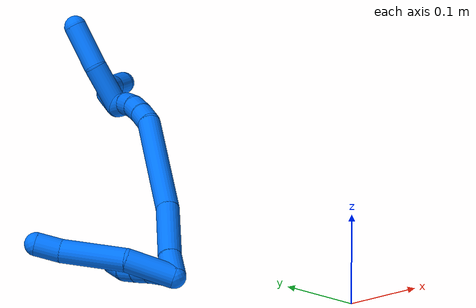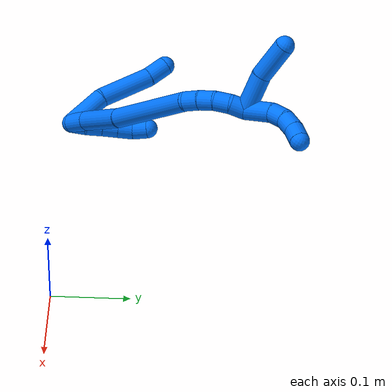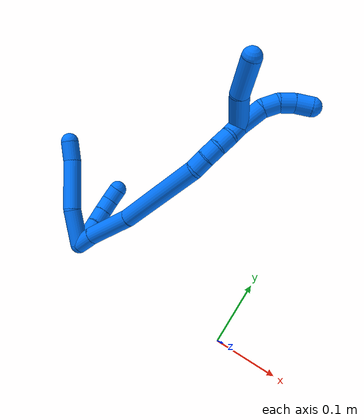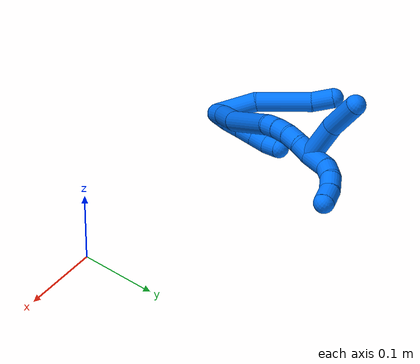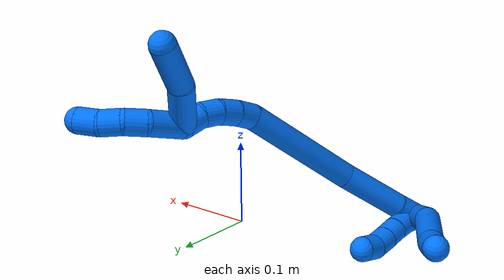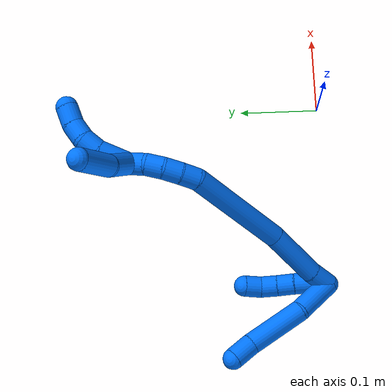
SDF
<sdf version="1.7">
 <world name="default">
  <model name="14">
   <static>0</static>
   <link name="14">
    <collision name="collision-cylinder-e_1_2_8">
     <pose>-0.017431 0.006884 0.018058 -0.364195 -0.733907 0.141315</pose>
     <geometry><cylinder><radius>0.0125</radius><length>0.052051</length></cylinder></geometry>
     <surface>
      <friction><ode><mu>1.16</mu><mu2>1.16</mu2><slip1>0</slip1><slip2>0</slip2></ode></friction>
      <contact><ode><kp>1e+06</kp><kd>1</kd><max_vel>0</max_vel><min_depth>0.001</min_depth></ode></contact>
     </surface>
    </collision>
    <visual name="visual-cylinder-e_1_2_8">
     <pose>-0.017431 0.006884 0.018058 -0.364195 -0.733907 0.141315</pose>
     <geometry><cylinder><radius>0.0125</radius><length>0.052051</length></cylinder></geometry>
     <material><ambient>0 0.462745 1 1</ambient></material>
    </visual>
    <collision name="collision-cylinder-e_2_8_9">
     <pose>-0.05904 0.031455 0.054611 -0.763101 -0.757001 0.316437</pose>
     <geometry><cylinder><radius>0.0125</radius><length>0.070412</length></cylinder></geometry>
     <surface>
      <friction><ode><mu>1.16</mu><mu2>1.16</mu2><slip1>0</slip1><slip2>0</slip2></ode></friction>
      <contact><ode><kp>1e+06</kp><kd>1</kd><max_vel>0</max_vel><min_depth>0.001</min_depth></ode></contact>
     </surface>
    </collision>
    <visual name="visual-cylinder-e_2_8_9">
     <pose>-0.05904 0.031455 0.054611 -0.763101 -0.757001 0.316437</pose>
     <geometry><cylinder><radius>0.0125</radius><length>0.070412</length></cylinder></geometry>
     <material><ambient>0 0.462745 1 1</ambient></material>
    </visual>
    <collision name="collision-cylinder-e_3_9_6">
     <pose>-0.092622 0.054039 0.081889 -0.508486 -0.751905 0.204438</pose>
     <geometry><cylinder><radius>0.0125</radius><length>0.027537</length></cylinder></geometry>
     <surface>
      <friction><ode><mu>1.16</mu><mu2>1.16</mu2><slip1>0</slip1><slip2>0</slip2></ode></friction>
      <contact><ode><kp>1e+06</kp><kd>1</kd><max_vel>0</max_vel><min_depth>0.001</min_depth></ode></contact>
     </surface>
    </collision>
    <visual name="visual-cylinder-e_3_9_6">
     <pose>-0.092622 0.054039 0.081889 -0.508486 -0.751905 0.204438</pose>
     <geometry><cylinder><radius>0.0125</radius><length>0.027537</length></cylinder></geometry>
     <material><ambient>0 0.462745 1 1</ambient></material>
    </visual>
    <collision name="collision-cylinder-e_1_2_10">
     <pose>-0.001379 0.009192 0.00369 -1.18907 -0.138368 0.093638</pose>
     <geometry><cylinder><radius>0.0125</radius><length>0.02</length></cylinder></geometry>
     <surface>
      <friction><ode><mu>1.16</mu><mu2>1.16</mu2><slip1>0</slip1><slip2>0</slip2></ode></friction>
      <contact><ode><kp>1e+06</kp><kd>1</kd><max_vel>0</max_vel><min_depth>0.001</min_depth></ode></contact>
     </surface>
    </collision>
    <visual name="visual-cylinder-e_1_2_10">
     <pose>-0.001379 0.009192 0.00369 -1.18907 -0.138368 0.093638</pose>
     <geometry><cylinder><radius>0.0125</radius><length>0.02</length></cylinder></geometry>
     <material><ambient>0 0.462745 1 1</ambient></material>
    </visual>
    <collision name="collision-cylinder-e_2_10_11">
     <pose>-0.005852 0.027144 0.011078 -1.17135 -0.314556 0.209614</pose>
     <geometry><cylinder><radius>0.0125</radius><length>0.02</length></cylinder></geometry>
     <surface>
      <friction><ode><mu>1.16</mu><mu2>1.16</mu2><slip1>0</slip1><slip2>0</slip2></ode></friction>
      <contact><ode><kp>1e+06</kp><kd>1</kd><max_vel>0</max_vel><min_depth>0.001</min_depth></ode></contact>
     </surface>
    </collision>
    <visual name="visual-cylinder-e_2_10_11">
     <pose>-0.005852 0.027144 0.011078 -1.17135 -0.314556 0.209614</pose>
     <geometry><cylinder><radius>0.0125</radius><length>0.02</length></cylinder></geometry>
     <material><ambient>0 0.462745 1 1</ambient></material>
    </visual>
    <collision name="collision-cylinder-e_3_11_12">
     <pose>-0.012417 0.044737 0.01793 -1.22779 -0.354449 0.251113</pose>
     <geometry><cylinder><radius>0.0125</radius><length>0.02</length></cylinder></geometry>
     <surface>
      <friction><ode><mu>1.16</mu><mu2>1.16</mu2><slip1>0</slip1><slip2>0</slip2></ode></friction>
      <contact><ode><kp>1e+06</kp><kd>1</kd><max_vel>0</max_vel><min_depth>0.001</min_depth></ode></contact>
     </surface>
    </collision>
    <visual name="visual-cylinder-e_3_11_12">
     <pose>-0.012417 0.044737 0.01793 -1.22779 -0.354449 0.251113</pose>
     <geometry><cylinder><radius>0.0125</radius><length>0.02</length></cylinder></geometry>
     <material><ambient>0 0.462745 1 1</ambient></material>
    </visual>
    <collision name="collision-cylinder-e_4_12_13">
     <pose>-0.019015 0.062452 0.024447 -1.20885 -0.318091 0.220662</pose>
     <geometry><cylinder><radius>0.0125</radius><length>0.02</length></cylinder></geometry>
     <surface>
      <friction><ode><mu>1.16</mu><mu2>1.16</mu2><slip1>0</slip1><slip2>0</slip2></ode></friction>
      <contact><ode><kp>1e+06</kp><kd>1</kd><max_vel>0</max_vel><min_depth>0.001</min_depth></ode></contact>
     </surface>
    </collision>
    <visual name="visual-cylinder-e_4_12_13">
     <pose>-0.019015 0.062452 0.024447 -1.20885 -0.318091 0.220662</pose>
     <geometry><cylinder><radius>0.0125</radius><length>0.02</length></cylinder></geometry>
     <material><ambient>0 0.462745 1 1</ambient></material>
    </visual>
    <collision name="collision-cylinder-e_5_13_5">
     <pose>-0.023526 0.07932 0.03367 -0.937799 -0.138735 0.070365</pose>
     <geometry><cylinder><radius>0.0125</radius><length>0.02</length></cylinder></geometry>
     <surface>
      <friction><ode><mu>1.16</mu><mu2>1.16</mu2><slip1>0</slip1><slip2>0</slip2></ode></friction>
      <contact><ode><kp>1e+06</kp><kd>1</kd><max_vel>0</max_vel><min_depth>0.001</min_depth></ode></contact>
     </surface>
    </collision>
    <visual name="visual-cylinder-e_5_13_5">
     <pose>-0.023526 0.07932 0.03367 -0.937799 -0.138735 0.070365</pose>
     <geometry><cylinder><radius>0.0125</radius><length>0.02</length></cylinder></geometry>
     <material><ambient>0 0.462745 1 1</ambient></material>
    </visual>
    <collision name="collision-cylinder-e_1_2_14">
     <pose>0.005158 0.008222 0.010112 -0.682651 0.376883 -0.135281</pose>
     <geometry><cylinder><radius>0.0125</radius><length>0.028032</length></cylinder></geometry>
     <surface>
      <friction><ode><mu>1.16</mu><mu2>1.16</mu2><slip1>0</slip1><slip2>0</slip2></ode></friction>
      <contact><ode><kp>1e+06</kp><kd>1</kd><max_vel>0</max_vel><min_depth>0.001</min_depth></ode></contact>
     </surface>
    </collision>
    <visual name="visual-cylinder-e_1_2_14">
     <pose>0.005158 0.008222 0.010112 -0.682651 0.376883 -0.135281</pose>
     <geometry><cylinder><radius>0.0125</radius><length>0.028032</length></cylinder></geometry>
     <material><ambient>0 0.462745 1 1</ambient></material>
    </visual>
    <collision name="collision-cylinder-e_2_14_15">
     <pose>0.026772 0.035303 0.0433 -0.68519 0.504481 -0.183329</pose>
     <geometry><cylinder><radius>0.0125</radius><length>0.068088</length></cylinder></geometry>
     <surface>
      <friction><ode><mu>1.16</mu><mu2>1.16</mu2><slip1>0</slip1><slip2>0</slip2></ode></friction>
      <contact><ode><kp>1e+06</kp><kd>1</kd><max_vel>0</max_vel><min_depth>0.001</min_depth></ode></contact>
     </surface>
    </collision>
    <visual name="visual-cylinder-e_2_14_15">
     <pose>0.026772 0.035303 0.0433 -0.68519 0.504481 -0.183329</pose>
     <geometry><cylinder><radius>0.0125</radius><length>0.068088</length></cylinder></geometry>
     <material><ambient>0 0.462745 1 1</ambient></material>
    </visual>
    <collision name="collision-cylinder-e_3_15_16">
     <pose>0.065837 0.087458 0.113316 -0.616945 0.374354 -0.120552</pose>
     <geometry><cylinder><radius>0.0125</radius><length>0.123662</length></cylinder></geometry>
     <surface>
      <friction><ode><mu>1.16</mu><mu2>1.16</mu2><slip1>0</slip1><slip2>0</slip2></ode></friction>
      <contact><ode><kp>1e+06</kp><kd>1</kd><max_vel>0</max_vel><min_depth>0.001</min_depth></ode></contact>
     </surface>
    </collision>
    <visual name="visual-cylinder-e_3_15_16">
     <pose>0.065837 0.087458 0.113316 -0.616945 0.374354 -0.120552</pose>
     <geometry><cylinder><radius>0.0125</radius><length>0.123662</length></cylinder></geometry>
     <material><ambient>0 0.462745 1 1</ambient></material>
    </visual>
    <collision name="collision-cylinder-e_4_16_17">
     <pose>0.089523 0.128272 0.166881 -0.848567 0.106963 -0.048354</pose>
     <geometry><cylinder><radius>0.0125</radius><length>0.02016</length></cylinder></geometry>
     <surface>
      <friction><ode><mu>1.16</mu><mu2>1.16</mu2><slip1>0</slip1><slip2>0</slip2></ode></friction>
      <contact><ode><kp>1e+06</kp><kd>1</kd><max_vel>0</max_vel><min_depth>0.001</min_depth></ode></contact>
     </surface>
    </collision>
    <visual name="visual-cylinder-e_4_16_17">
     <pose>0.089523 0.128272 0.166881 -0.848567 0.106963 -0.048354</pose>
     <geometry><cylinder><radius>0.0125</radius><length>0.02016</length></cylinder></geometry>
     <material><ambient>0 0.462745 1 1</ambient></material>
    </visual>
    <collision name="collision-cylinder-e_5_17_18">
     <pose>0.091303 0.144062 0.179096 -0.976448 0.070441 -0.037423</pose>
     <geometry><cylinder><radius>0.0125</radius><length>0.020012</length></cylinder></geometry>
     <surface>
      <friction><ode><mu>1.16</mu><mu2>1.16</mu2><slip1>0</slip1><slip2>0</slip2></ode></friction>
      <contact><ode><kp>1e+06</kp><kd>1</kd><max_vel>0</max_vel><min_depth>0.001</min_depth></ode></contact>
     </surface>
    </collision>
    <visual name="visual-cylinder-e_5_17_18">
     <pose>0.091303 0.144062 0.179096 -0.976448 0.070441 -0.037423</pose>
     <geometry><cylinder><radius>0.0125</radius><length>0.020012</length></cylinder></geometry>
     <material><ambient>0 0.462745 1 1</ambient></material>
    </visual>
    <collision name="collision-cylinder-e_6_18_19">
     <pose>0.091853 0.161602 0.188433 -1.18656 -0.015488 0.010444</pose>
     <geometry><cylinder><radius>0.0125</radius><length>0.020002</length></cylinder></geometry>
     <surface>
      <friction><ode><mu>1.16</mu><mu2>1.16</mu2><slip1>0</slip1><slip2>0</slip2></ode></friction>
      <contact><ode><kp>1e+06</kp><kd>1</kd><max_vel>0</max_vel><min_depth>0.001</min_depth></ode></contact>
     </surface>
    </collision>
    <visual name="visual-cylinder-e_6_18_19">
     <pose>0.091853 0.161602 0.188433 -1.18656 -0.015488 0.010444</pose>
     <geometry><cylinder><radius>0.0125</radius><length>0.020002</length></cylinder></geometry>
     <material><ambient>0 0.462745 1 1</ambient></material>
    </visual>
    <collision name="collision-cylinder-e_7_19_1">
     <pose>0.089818 0.180632 0.193471 -1.43942 -0.188668 0.165491</pose>
     <geometry><cylinder><radius>0.0125</radius><length>0.020045</length></cylinder></geometry>
     <surface>
      <friction><ode><mu>1.16</mu><mu2>1.16</mu2><slip1>0</slip1><slip2>0</slip2></ode></friction>
      <contact><ode><kp>1e+06</kp><kd>1</kd><max_vel>0</max_vel><min_depth>0.001</min_depth></ode></contact>
     </surface>
    </collision>
    <visual name="visual-cylinder-e_7_19_1">
     <pose>0.089818 0.180632 0.193471 -1.43942 -0.188668 0.165491</pose>
     <geometry><cylinder><radius>0.0125</radius><length>0.020045</length></cylinder></geometry>
     <material><ambient>0 0.462745 1 1</ambient></material>
    </visual>
    <collision name="collision-cylinder-e_1_1_20">
     <pose>0.085037 0.187766 0.219358 0.106336 -0.116759 -0.006221</pose>
     <geometry><cylinder><radius>0.0125</radius><length>0.049813</length></cylinder></geometry>
     <surface>
      <friction><ode><mu>1.16</mu><mu2>1.16</mu2><slip1>0</slip1><slip2>0</slip2></ode></friction>
      <contact><ode><kp>1e+06</kp><kd>1</kd><max_vel>0</max_vel><min_depth>0.001</min_depth></ode></contact>
     </surface>
    </collision>
    <visual name="visual-cylinder-e_1_1_20">
     <pose>0.085037 0.187766 0.219358 0.106336 -0.116759 -0.006221</pose>
     <geometry><cylinder><radius>0.0125</radius><length>0.049813</length></cylinder></geometry>
     <material><ambient>0 0.462745 1 1</ambient></material>
    </visual>
    <collision name="collision-cylinder-e_2_20_4">
     <pose>0.08248 0.188209 0.268858 -0.122591 0.013717 -0.000842</pose>
     <geometry><cylinder><radius>0.0125</radius><length>0.050187</length></cylinder></geometry>
     <surface>
      <friction><ode><mu>1.16</mu><mu2>1.16</mu2><slip1>0</slip1><slip2>0</slip2></ode></friction>
      <contact><ode><kp>1e+06</kp><kd>1</kd><max_vel>0</max_vel><min_depth>0.001</min_depth></ode></contact>
     </surface>
    </collision>
    <visual name="visual-cylinder-e_2_20_4">
     <pose>0.08248 0.188209 0.268858 -0.122591 0.013717 -0.000842</pose>
     <geometry><cylinder><radius>0.0125</radius><length>0.050187</length></cylinder></geometry>
     <material><ambient>0 0.462745 1 1</ambient></material>
    </visual>
    <collision name="collision-cylinder-e_1_1_21">
     <pose>0.090992 0.205524 0.204263 -1.01011 0.169278 -0.093746</pose>
     <geometry><cylinder><radius>0.0125</radius><length>0.036255</length></cylinder></geometry>
     <surface>
      <friction><ode><mu>1.16</mu><mu2>1.16</mu2><slip1>0</slip1><slip2>0</slip2></ode></friction>
      <contact><ode><kp>1e+06</kp><kd>1</kd><max_vel>0</max_vel><min_depth>0.001</min_depth></ode></contact>
     </surface>
    </collision>
    <visual name="visual-cylinder-e_1_1_21">
     <pose>0.090992 0.205524 0.204263 -1.01011 0.169278 -0.093746</pose>
     <geometry><cylinder><radius>0.0125</radius><length>0.036255</length></cylinder></geometry>
     <material><ambient>0 0.462745 1 1</ambient></material>
    </visual>
    <collision name="collision-cylinder-e_2_21_22">
     <pose>0.098573 0.229534 0.21701 -1.22025 0.446655 -0.314926</pose>
     <geometry><cylinder><radius>0.0125</radius><length>0.02096</length></cylinder></geometry>
     <surface>
      <friction><ode><mu>1.16</mu><mu2>1.16</mu2><slip1>0</slip1><slip2>0</slip2></ode></friction>
      <contact><ode><kp>1e+06</kp><kd>1</kd><max_vel>0</max_vel><min_depth>0.001</min_depth></ode></contact>
     </surface>
    </collision>
    <visual name="visual-cylinder-e_2_21_22">
     <pose>0.098573 0.229534 0.21701 -1.22025 0.446655 -0.314926</pose>
     <geometry><cylinder><radius>0.0125</radius><length>0.02096</length></cylinder></geometry>
     <material><ambient>0 0.462745 1 1</ambient></material>
    </visual>
    <collision name="collision-cylinder-e_3_22_23">
     <pose>0.109281 0.246698 0.220447 -1.54776 0.640685 -0.627038</pose>
     <geometry><cylinder><radius>0.0125</radius><length>0.02068</length></cylinder></geometry>
     <surface>
      <friction><ode><mu>1.16</mu><mu2>1.16</mu2><slip1>0</slip1><slip2>0</slip2></ode></friction>
      <contact><ode><kp>1e+06</kp><kd>1</kd><max_vel>0</max_vel><min_depth>0.001</min_depth></ode></contact>
     </surface>
    </collision>
    <visual name="visual-cylinder-e_3_22_23">
     <pose>0.109281 0.246698 0.220447 -1.54776 0.640685 -0.627038</pose>
     <geometry><cylinder><radius>0.0125</radius><length>0.02068</length></cylinder></geometry>
     <material><ambient>0 0.462745 1 1</ambient></material>
    </visual>
    <collision name="collision-cylinder-e_4_23_3">
     <pose>0.124187 0.261768 0.220526 -1.58732 0.910003 -0.923118</pose>
     <geometry><cylinder><radius>0.0125</radius><length>0.022105</length></cylinder></geometry>
     <surface>
      <friction><ode><mu>1.16</mu><mu2>1.16</mu2><slip1>0</slip1><slip2>0</slip2></ode></friction>
      <contact><ode><kp>1e+06</kp><kd>1</kd><max_vel>0</max_vel><min_depth>0.001</min_depth></ode></contact>
     </surface>
    </collision>
    <visual name="visual-cylinder-e_4_23_3">
     <pose>0.124187 0.261768 0.220526 -1.58732 0.910003 -0.923118</pose>
     <geometry><cylinder><radius>0.0125</radius><length>0.022105</length></cylinder></geometry>
     <material><ambient>0 0.462745 1 1</ambient></material>
    </visual>
    <collision name="collision-sphere-3">
     <pose>0.132913 0.26855 0.220414 0 -0 0</pose>
     <geometry><sphere><radius>0.0125</radius></sphere></geometry>
     <surface>
      <friction><ode><mu>1.16</mu><mu2>1.16</mu2><slip1>0</slip1><slip2>0</slip2></ode></friction>
      <contact><ode><kp>1e+06</kp><kd>1</kd><max_vel>0</max_vel><min_depth>0.001</min_depth></ode></contact>
     </surface>
    </collision>
    <visual name="visual-sphere-3">
     <pose>0.132913 0.26855 0.220414 0 -0 0</pose>
     <geometry><sphere><radius>0.0125</radius></sphere></geometry>
     <material><ambient>0 0.462745 1 1</ambient></material>
    </visual>
    <collision name="collision-sphere-23">
     <pose>0.115462 0.254986 0.220638 0 -0 0</pose>
     <geometry><sphere><radius>0.0125</radius></sphere></geometry>
     <surface>
      <friction><ode><mu>1.16</mu><mu2>1.16</mu2><slip1>0</slip1><slip2>0</slip2></ode></friction>
      <contact><ode><kp>1e+06</kp><kd>1</kd><max_vel>0</max_vel><min_depth>0.001</min_depth></ode></contact>
     </surface>
    </collision>
    <visual name="visual-sphere-23">
     <pose>0.115462 0.254986 0.220638 0 -0 0</pose>
     <geometry><sphere><radius>0.0125</radius></sphere></geometry>
     <material><ambient>0 0.462745 1 1</ambient></material>
    </visual>
    <collision name="collision-sphere-22">
     <pose>0.1031 0.238411 0.220256 0 -0 0</pose>
     <geometry><sphere><radius>0.0125</radius></sphere></geometry>
     <surface>
      <friction><ode><mu>1.16</mu><mu2>1.16</mu2><slip1>0</slip1><slip2>0</slip2></ode></friction>
      <contact><ode><kp>1e+06</kp><kd>1</kd><max_vel>0</max_vel><min_depth>0.001</min_depth></ode></contact>
     </surface>
    </collision>
    <visual name="visual-sphere-22">
     <pose>0.1031 0.238411 0.220256 0 -0 0</pose>
     <geometry><sphere><radius>0.0125</radius></sphere></geometry>
     <material><ambient>0 0.462745 1 1</ambient></material>
    </visual>
    <collision name="collision-sphere-21">
     <pose>0.094046 0.220656 0.213764 0 -0 0</pose>
     <geometry><sphere><radius>0.0125</radius></sphere></geometry>
     <surface>
      <friction><ode><mu>1.16</mu><mu2>1.16</mu2><slip1>0</slip1><slip2>0</slip2></ode></friction>
      <contact><ode><kp>1e+06</kp><kd>1</kd><max_vel>0</max_vel><min_depth>0.001</min_depth></ode></contact>
     </surface>
    </collision>
    <visual name="visual-sphere-21">
     <pose>0.094046 0.220656 0.213764 0 -0 0</pose>
     <geometry><sphere><radius>0.0125</radius></sphere></geometry>
     <material><ambient>0 0.462745 1 1</ambient></material>
    </visual>
    <collision name="collision-sphere-4">
     <pose>0.082824 0.191277 0.293761 0 -0 0</pose>
     <geometry><sphere><radius>0.0125</radius></sphere></geometry>
     <surface>
      <friction><ode><mu>1.16</mu><mu2>1.16</mu2><slip1>0</slip1><slip2>0</slip2></ode></friction>
      <contact><ode><kp>1e+06</kp><kd>1</kd><max_vel>0</max_vel><min_depth>0.001</min_depth></ode></contact>
     </surface>
    </collision>
    <visual name="visual-sphere-4">
     <pose>0.082824 0.191277 0.293761 0 -0 0</pose>
     <geometry><sphere><radius>0.0125</radius></sphere></geometry>
     <material><ambient>0 0.462745 1 1</ambient></material>
    </visual>
    <collision name="collision-sphere-20">
     <pose>0.082135 0.185141 0.243955 0 -0 0</pose>
     <geometry><sphere><radius>0.0125</radius></sphere></geometry>
     <surface>
      <friction><ode><mu>1.16</mu><mu2>1.16</mu2><slip1>0</slip1><slip2>0</slip2></ode></friction>
      <contact><ode><kp>1e+06</kp><kd>1</kd><max_vel>0</max_vel><min_depth>0.001</min_depth></ode></contact>
     </surface>
    </collision>
    <visual name="visual-sphere-20">
     <pose>0.082135 0.185141 0.243955 0 -0 0</pose>
     <geometry><sphere><radius>0.0125</radius></sphere></geometry>
     <material><ambient>0 0.462745 1 1</ambient></material>
    </visual>
    <collision name="collision-sphere-11">
     <pose>-0.008946 0.035904 0.014776 0 -0 0</pose>
     <geometry><sphere><radius>0.0125</radius></sphere></geometry>
     <surface>
      <friction><ode><mu>1.16</mu><mu2>1.16</mu2><slip1>0</slip1><slip2>0</slip2></ode></friction>
      <contact><ode><kp>1e+06</kp><kd>1</kd><max_vel>0</max_vel><min_depth>0.001</min_depth></ode></contact>
     </surface>
    </collision>
    <visual name="visual-sphere-11">
     <pose>-0.008946 0.035904 0.014776 0 -0 0</pose>
     <geometry><sphere><radius>0.0125</radius></sphere></geometry>
     <material><ambient>0 0.462745 1 1</ambient></material>
    </visual>
    <collision name="collision-sphere-10">
     <pose>-0.002759 0.018383 0.007379 0 -0 0</pose>
     <geometry><sphere><radius>0.0125</radius></sphere></geometry>
     <surface>
      <friction><ode><mu>1.16</mu><mu2>1.16</mu2><slip1>0</slip1><slip2>0</slip2></ode></friction>
      <contact><ode><kp>1e+06</kp><kd>1</kd><max_vel>0</max_vel><min_depth>0.001</min_depth></ode></contact>
     </surface>
    </collision>
    <visual name="visual-sphere-10">
     <pose>-0.002759 0.018383 0.007379 0 -0 0</pose>
     <geometry><sphere><radius>0.0125</radius></sphere></geometry>
     <material><ambient>0 0.462745 1 1</ambient></material>
    </visual>
    <collision name="collision-sphere-6">
     <pose>-0.102026 0.058935 0.090673 0 -0 0</pose>
     <geometry><sphere><radius>0.0125</radius></sphere></geometry>
     <surface>
      <friction><ode><mu>1.16</mu><mu2>1.16</mu2><slip1>0</slip1><slip2>0</slip2></ode></friction>
      <contact><ode><kp>1e+06</kp><kd>1</kd><max_vel>0</max_vel><min_depth>0.001</min_depth></ode></contact>
     </surface>
    </collision>
    <visual name="visual-sphere-6">
     <pose>-0.102026 0.058935 0.090673 0 -0 0</pose>
     <geometry><sphere><radius>0.0125</radius></sphere></geometry>
     <material><ambient>0 0.462745 1 1</ambient></material>
    </visual>
    <collision name="collision-sphere-9">
     <pose>-0.083218 0.049143 0.073105 0 -0 0</pose>
     <geometry><sphere><radius>0.0125</radius></sphere></geometry>
     <surface>
      <friction><ode><mu>1.16</mu><mu2>1.16</mu2><slip1>0</slip1><slip2>0</slip2></ode></friction>
      <contact><ode><kp>1e+06</kp><kd>1</kd><max_vel>0</max_vel><min_depth>0.001</min_depth></ode></contact>
     </surface>
    </collision>
    <visual name="visual-sphere-9">
     <pose>-0.083218 0.049143 0.073105 0 -0 0</pose>
     <geometry><sphere><radius>0.0125</radius></sphere></geometry>
     <material><ambient>0 0.462745 1 1</ambient></material>
    </visual>
    <collision name="collision-sphere-2">
     <geometry><sphere><radius>0.0125</radius></sphere></geometry>
     <surface>
      <friction><ode><mu>1.16</mu><mu2>1.16</mu2><slip1>0</slip1><slip2>0</slip2></ode></friction>
      <contact><ode><kp>1e+06</kp><kd>1</kd><max_vel>0</max_vel><min_depth>0.001</min_depth></ode></contact>
     </surface>
    </collision>
    <visual name="visual-sphere-2">
     <geometry><sphere><radius>0.0125</radius></sphere></geometry>
     <material><ambient>0 0.462745 1 1</ambient></material>
    </visual>
    <collision name="collision-sphere-19">
     <pose>0.091698 0.170872 0.192181 0 -0 0</pose>
     <geometry><sphere><radius>0.0125</radius></sphere></geometry>
     <surface>
      <friction><ode><mu>1.16</mu><mu2>1.16</mu2><slip1>0</slip1><slip2>0</slip2></ode></friction>
      <contact><ode><kp>1e+06</kp><kd>1</kd><max_vel>0</max_vel><min_depth>0.001</min_depth></ode></contact>
     </surface>
    </collision>
    <visual name="visual-sphere-19">
     <pose>0.091698 0.170872 0.192181 0 -0 0</pose>
     <geometry><sphere><radius>0.0125</radius></sphere></geometry>
     <material><ambient>0 0.462745 1 1</ambient></material>
    </visual>
    <collision name="collision-sphere-8">
     <pose>-0.034862 0.013767 0.036116 0 -0 0</pose>
     <geometry><sphere><radius>0.0125</radius></sphere></geometry>
     <surface>
      <friction><ode><mu>1.16</mu><mu2>1.16</mu2><slip1>0</slip1><slip2>0</slip2></ode></friction>
      <contact><ode><kp>1e+06</kp><kd>1</kd><max_vel>0</max_vel><min_depth>0.001</min_depth></ode></contact>
     </surface>
    </collision>
    <visual name="visual-sphere-8">
     <pose>-0.034862 0.013767 0.036116 0 -0 0</pose>
     <geometry><sphere><radius>0.0125</radius></sphere></geometry>
     <material><ambient>0 0.462745 1 1</ambient></material>
    </visual>
    <collision name="collision-sphere-12">
     <pose>-0.015888 0.053569 0.021084 0 -0 0</pose>
     <geometry><sphere><radius>0.0125</radius></sphere></geometry>
     <surface>
      <friction><ode><mu>1.16</mu><mu2>1.16</mu2><slip1>0</slip1><slip2>0</slip2></ode></friction>
      <contact><ode><kp>1e+06</kp><kd>1</kd><max_vel>0</max_vel><min_depth>0.001</min_depth></ode></contact>
     </surface>
    </collision>
    <visual name="visual-sphere-12">
     <pose>-0.015888 0.053569 0.021084 0 -0 0</pose>
     <geometry><sphere><radius>0.0125</radius></sphere></geometry>
     <material><ambient>0 0.462745 1 1</ambient></material>
    </visual>
    <collision name="collision-sphere-13">
     <pose>-0.022143 0.071335 0.027811 0 -0 0</pose>
     <geometry><sphere><radius>0.0125</radius></sphere></geometry>
     <surface>
      <friction><ode><mu>1.16</mu><mu2>1.16</mu2><slip1>0</slip1><slip2>0</slip2></ode></friction>
      <contact><ode><kp>1e+06</kp><kd>1</kd><max_vel>0</max_vel><min_depth>0.001</min_depth></ode></contact>
     </surface>
    </collision>
    <visual name="visual-sphere-13">
     <pose>-0.022143 0.071335 0.027811 0 -0 0</pose>
     <geometry><sphere><radius>0.0125</radius></sphere></geometry>
     <material><ambient>0 0.462745 1 1</ambient></material>
    </visual>
    <collision name="collision-sphere-5">
     <pose>-0.024909 0.087305 0.039528 0 -0 0</pose>
     <geometry><sphere><radius>0.0125</radius></sphere></geometry>
     <surface>
      <friction><ode><mu>1.16</mu><mu2>1.16</mu2><slip1>0</slip1><slip2>0</slip2></ode></friction>
      <contact><ode><kp>1e+06</kp><kd>1</kd><max_vel>0</max_vel><min_depth>0.001</min_depth></ode></contact>
     </surface>
    </collision>
    <visual name="visual-sphere-5">
     <pose>-0.024909 0.087305 0.039528 0 -0 0</pose>
     <geometry><sphere><radius>0.0125</radius></sphere></geometry>
     <material><ambient>0 0.462745 1 1</ambient></material>
    </visual>
    <collision name="collision-sphere-14">
     <pose>0.010317 0.016443 0.020224 0 -0 0</pose>
     <geometry><sphere><radius>0.0125</radius></sphere></geometry>
     <surface>
      <friction><ode><mu>1.16</mu><mu2>1.16</mu2><slip1>0</slip1><slip2>0</slip2></ode></friction>
      <contact><ode><kp>1e+06</kp><kd>1</kd><max_vel>0</max_vel><min_depth>0.001</min_depth></ode></contact>
     </surface>
    </collision>
    <visual name="visual-sphere-14">
     <pose>0.010317 0.016443 0.020224 0 -0 0</pose>
     <geometry><sphere><radius>0.0125</radius></sphere></geometry>
     <material><ambient>0 0.462745 1 1</ambient></material>
    </visual>
    <collision name="collision-sphere-15">
     <pose>0.043227 0.054163 0.066377 0 -0 0</pose>
     <geometry><sphere><radius>0.0125</radius></sphere></geometry>
     <surface>
      <friction><ode><mu>1.16</mu><mu2>1.16</mu2><slip1>0</slip1><slip2>0</slip2></ode></friction>
      <contact><ode><kp>1e+06</kp><kd>1</kd><max_vel>0</max_vel><min_depth>0.001</min_depth></ode></contact>
     </surface>
    </collision>
    <visual name="visual-sphere-15">
     <pose>0.043227 0.054163 0.066377 0 -0 0</pose>
     <geometry><sphere><radius>0.0125</radius></sphere></geometry>
     <material><ambient>0 0.462745 1 1</ambient></material>
    </visual>
    <collision name="collision-sphere-16">
     <pose>0.088447 0.120752 0.160256 0 -0 0</pose>
     <geometry><sphere><radius>0.0125</radius></sphere></geometry>
     <surface>
      <friction><ode><mu>1.16</mu><mu2>1.16</mu2><slip1>0</slip1><slip2>0</slip2></ode></friction>
      <contact><ode><kp>1e+06</kp><kd>1</kd><max_vel>0</max_vel><min_depth>0.001</min_depth></ode></contact>
     </surface>
    </collision>
    <visual name="visual-sphere-16">
     <pose>0.088447 0.120752 0.160256 0 -0 0</pose>
     <geometry><sphere><radius>0.0125</radius></sphere></geometry>
     <material><ambient>0 0.462745 1 1</ambient></material>
    </visual>
    <collision name="collision-sphere-17">
     <pose>0.090599 0.135792 0.173507 0 -0 0</pose>
     <geometry><sphere><radius>0.0125</radius></sphere></geometry>
     <surface>
      <friction><ode><mu>1.16</mu><mu2>1.16</mu2><slip1>0</slip1><slip2>0</slip2></ode></friction>
      <contact><ode><kp>1e+06</kp><kd>1</kd><max_vel>0</max_vel><min_depth>0.001</min_depth></ode></contact>
     </surface>
    </collision>
    <visual name="visual-sphere-17">
     <pose>0.090599 0.135792 0.173507 0 -0 0</pose>
     <geometry><sphere><radius>0.0125</radius></sphere></geometry>
     <material><ambient>0 0.462745 1 1</ambient></material>
    </visual>
    <collision name="collision-sphere-18">
     <pose>0.092007 0.152331 0.184685 0 -0 0</pose>
     <geometry><sphere><radius>0.0125</radius></sphere></geometry>
     <surface>
      <friction><ode><mu>1.16</mu><mu2>1.16</mu2><slip1>0</slip1><slip2>0</slip2></ode></friction>
      <contact><ode><kp>1e+06</kp><kd>1</kd><max_vel>0</max_vel><min_depth>0.001</min_depth></ode></contact>
     </surface>
    </collision>
    <visual name="visual-sphere-18">
     <pose>0.092007 0.152331 0.184685 0 -0 0</pose>
     <geometry><sphere><radius>0.0125</radius></sphere></geometry>
     <material><ambient>0 0.462745 1 1</ambient></material>
    </visual>
    <collision name="collision-sphere-1">
     <pose>0.087938 0.190391 0.194761 0 -0 0</pose>
     <geometry><sphere><radius>0.0125</radius></sphere></geometry>
     <surface>
      <friction><ode><mu>1.16</mu><mu2>1.16</mu2><slip1>0</slip1><slip2>0</slip2></ode></friction>
      <contact><ode><kp>1e+06</kp><kd>1</kd><max_vel>0</max_vel><min_depth>0.001</min_depth></ode></contact>
     </surface>
    </collision>
    <visual name="visual-sphere-1">
     <pose>0.087938 0.190391 0.194761 0 -0 0</pose>
     <geometry><sphere><radius>0.0125</radius></sphere></geometry>
     <material><ambient>0 0.462745 1 1</ambient></material>
    </visual>
    <inertial>
     <pose>0.036353 0.101651 0.115339 0 -0 0</pose>
     <mass>0.75</mass>
     <inertia>
      <ixx>0.000242</ixx>
      <ixy>0</ixy>
      <ixz>0</ixz>
      <iyy>0.000257</iyy>
      <iyz>0</iyz>
      <izz>-0.000153</izz>
     </inertia>
    </inertial>
   </link>
   <pose>-0.24747 0.010214 0.07204 -0.382232 -0.312448 -0.27433</pose>
  </model>
 </world>
</sdf>
